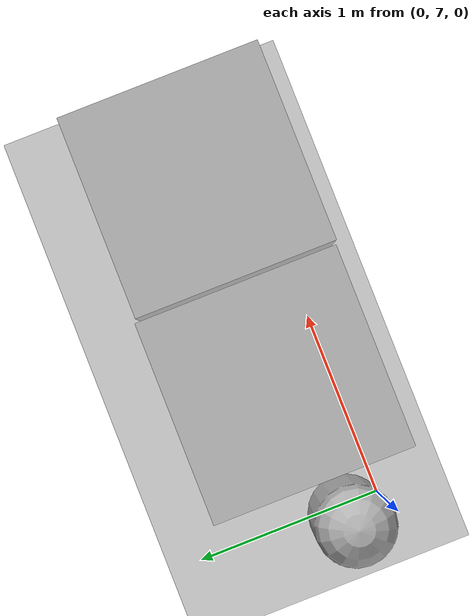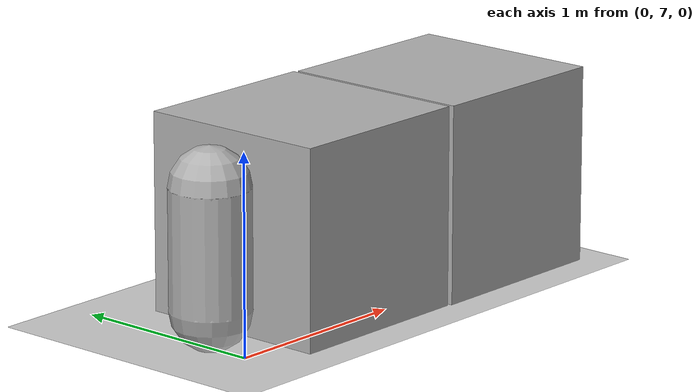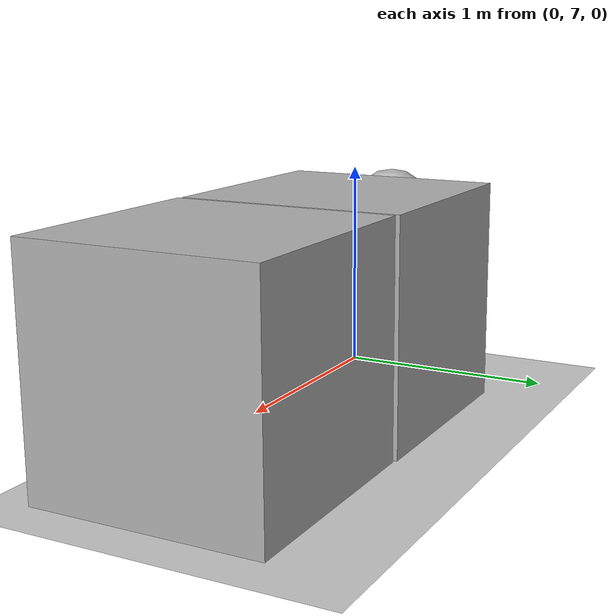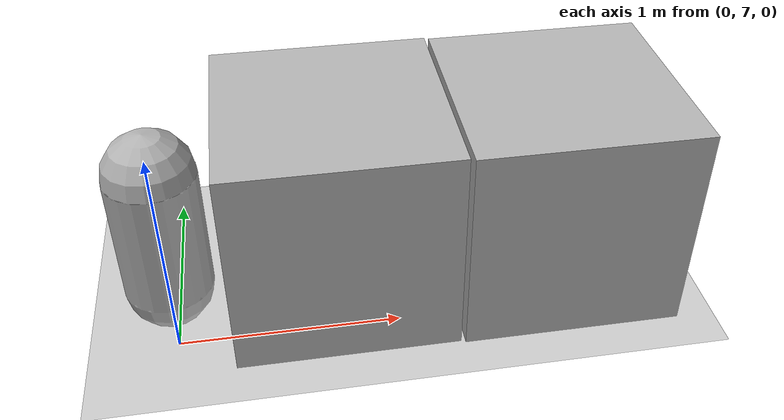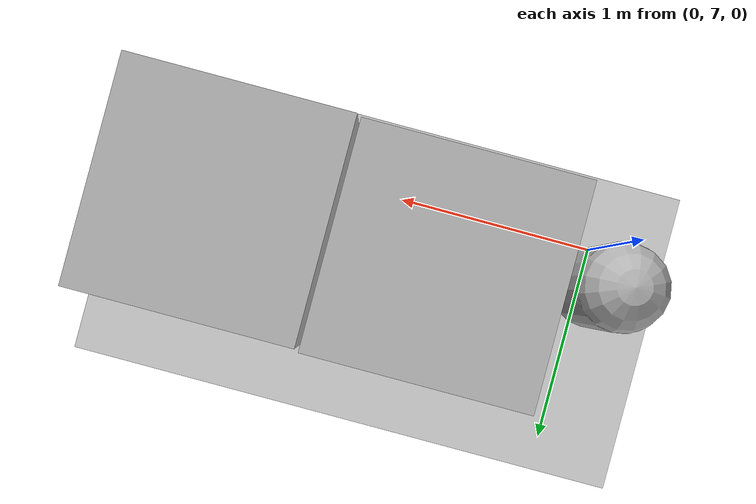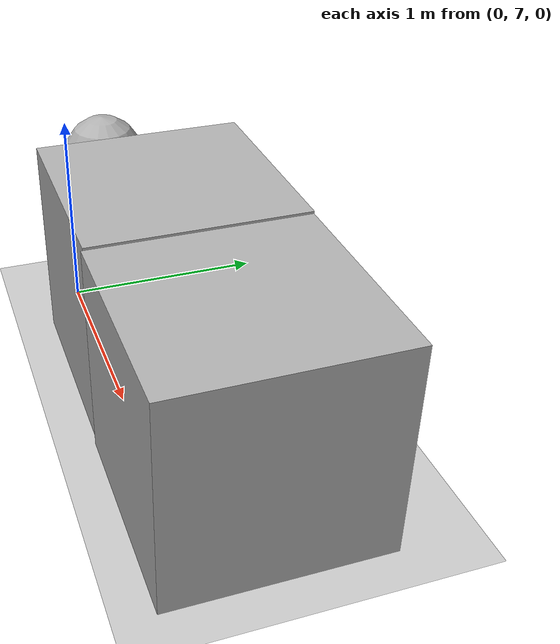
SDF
<?xml version="1.0"?>
<sdf version="1.10">
  <world name="sensor_world">

    <!-- Physics + Core Systems -->
    <physics name="1ms" type="ignored">
      <max_step_size>0.001</max_step_size>
      <real_time_factor>1</real_time_factor>
      <real_time_update_rate>1000</real_time_update_rate>
    </physics>

    <!-- Physics system -->
    <plugin
        name="gz::sim::systems::Physics"
        filename="gz-sim-physics-system"/>

    <!-- UserCommands: để có /world/sensor_world/create -->
    <plugin
        name="gz::sim::systems::UserCommands"
        filename="gz-sim-user-commands-system"/>

    <!-- Scene broadcaster -->
    <plugin
        name="gz::sim::systems::SceneBroadcaster"
        filename="gz-sim-scene-broadcaster-system"/>

    <!-- Sensors: để LiDAR, camera... hoạt động -->
    <plugin
        name="gz::sim::systems::Sensors"
        filename="gz-sim-sensors-system">
      <render_engine>ogre2</render_engine>
    </plugin>

    <!-- World Environment     -->
    <gravity>0 0 -9.81</gravity>
    <magnetic_field>5.5645e-06 2.28758e-05 -4.23884e-05</magnetic_field>
    <atmosphere type="adiabatic"/>

    <scene>
      <ambient>0.4 0.4 0.4 1</ambient>
      <background>0.7 0.7 0.7 1</background>
      <shadows>true</shadows>
    </scene>

    <!-- Ground Plane          -->
    <model name="ground_plane">
      <static>true</static>
      <link name="link">
        <collision name="collision">
          <geometry>
            <plane>
              <normal>0 0 1</normal>
              <size>100 100</size>
            </plane>
          </geometry>
          <surface>
            <friction>
              <ode/>
            </friction>
            <bounce/>
            <contact/>
          </surface>
        </collision>
        <visual name="visual">
          <geometry>
            <plane>
              <normal>0 0 1</normal>
              <size>100 100</size>
            </plane>
          </geometry>
          <material>
            <ambient>0.8 0.8 0.8 1</ambient>
            <diffuse>0.8 0.8 0.8 1</diffuse>
            <specular>0.8 0.8 0.8 1</specular>
          </material>
        </visual>
        <pose>0 0 0 0 0 0</pose>
        <inertial>
          <pose>0 0 0 0 0 0</pose>
          <mass>1</mass>
          <inertia>
            <ixx>1</ixx><ixy>0</ixy><ixz>0</ixz>
            <iyy>1</iyy><iyz>0</iyz><izz>1</izz>
          </inertia>
        </inertial>
        <enable_wind>false</enable_wind>
      </link>
      <pose>0 0 0 0 0 0</pose>
      <self_collide>false</self_collide>
    </model>

    <!-- Obstacle: box         -->
    <model name="box">
      <pose>0.74918 7.31337 0.5 0 0 0</pose>
      <link name="box_link">
        <inertial>
          <inertia>
            <ixx>0.16666</ixx><ixy>0</ixy><ixz>0</ixz>
            <iyy>0.16666</iyy><iyz>0</iyz><izz>0.16666</izz>
          </inertia>
          <mass>1</mass>
        </inertial>
        <collision name="box_collision">
          <geometry>
            <box>
              <size>1 1 1</size>
            </box>
          </geometry>
          <surface>
            <friction>
              <ode/>
            </friction>
            <bounce/>
            <contact/>
          </surface>
        </collision>
        <visual name="box_visual">
          <geometry>
            <box>
              <size>1 1 1</size>
            </box>
          </geometry>
          <material>
            <ambient>0.3 0.3 0.3 1</ambient>
            <diffuse>0.7 0.7 0.7 1</diffuse>
            <specular>1 1 1 1</specular>
          </material>
        </visual>
        <pose>0 0 0 0 0 0</pose>
        <enable_wind>false</enable_wind>
      </link>
      <static>false</static>
      <self_collide>false</self_collide>
    </model>

    <!-- Obstacle: box_0       -->
    <model name="box_0">
      <pose>1.76794 7.30272 0.5 0 0 0</pose>
      <link name="box_link">
        <inertial>
          <inertia>
            <ixx>0.16666</ixx><ixy>0</ixy><ixz>0</ixz>
            <iyy>0.16666</iyy><iyz>0</iyz><izz>0.16666</izz>
          </inertia>
          <mass>1</mass>
        </inertial>
        <collision name="box_collision">
          <geometry>
            <box>
              <size>1 1 1</size>
            </box>
          </geometry>
          <surface>
            <friction>
              <ode/>
            </friction>
            <bounce/>
            <contact/>
          </surface>
        </collision>
        <visual name="box_visual">
          <geometry>
            <box>
              <size>1 1 1</size>
            </box>
          </geometry>
          <material>
            <ambient>0.3 0.3 0.3 1</ambient>
            <diffuse>0.7 0.7 0.7 1</diffuse>
            <specular>1 1 1 1</specular>
          </material>
        </visual>
        <pose>0 0 0 0 0 0</pose>
        <enable_wind>false</enable_wind>
      </link>
      <static>false</static>
      <self_collide>false</self_collide>
    </model>

    <!-- Obstacle: capsule     -->
    <model name="capsule">
      <pose>-0.02078 7.19649 0.5 0 0 0</pose>
      <link name="capsule_link">
        <inertial>
          <inertia>
            <ixx>0.074154</ixx><ixy>0</ixy><ixz>0</ixz>
            <iyy>0.074154</iyy><iyz>0</iyz><izz>0.018769</izz>
          </inertia>
          <mass>1</mass>
        </inertial>
        <collision name="capsule_collision">
          <geometry>
            <capsule>
              <radius>0.2</radius>
              <length>0.6</length>
            </capsule>
          </geometry>
          <surface>
            <friction>
              <ode/>
            </friction>
            <bounce/>
            <contact/>
          </surface>
        </collision>
        <visual name="capsule_visual">
          <geometry>
            <capsule>
              <radius>0.2</radius>
              <length>0.6</length>
            </capsule>
          </geometry>
          <material>
            <ambient>0.3 0.3 0.3 1</ambient>
            <diffuse>0.7 0.7 0.7 1</diffuse>
            <specular>1 1 1 1</specular>
          </material>
        </visual>
        <pose>0 0 0 0 0 0</pose>
        <enable_wind>false</enable_wind>
      </link>
      <static>false</static>
      <self_collide>false</self_collide>
    </model>

    <!-- Sun Light             -->
    <light name="sun" type="directional">
      <pose>0 0 10 0 0 0</pose>
      <cast_shadows>true</cast_shadows>
      <intensity>1</intensity>
      <direction>-0.5 0.1 -0.9</direction>
      <diffuse>0.8 0.8 0.8 1</diffuse>
      <specular>0.2 0.2 0.2 1</specular>
      <attenuation>
        <range>1000</range>
        <linear>0.01</linear>
        <constant>0.9</constant>
        <quadratic>0.001</quadratic>
      </attenuation>
    </light>

  </world>
</sdf>
